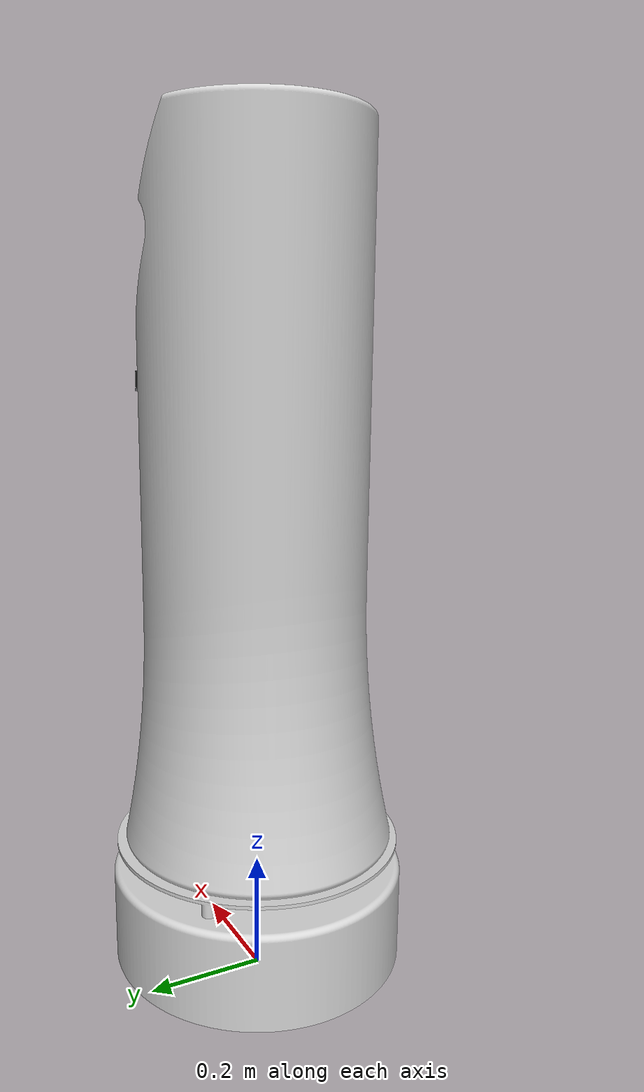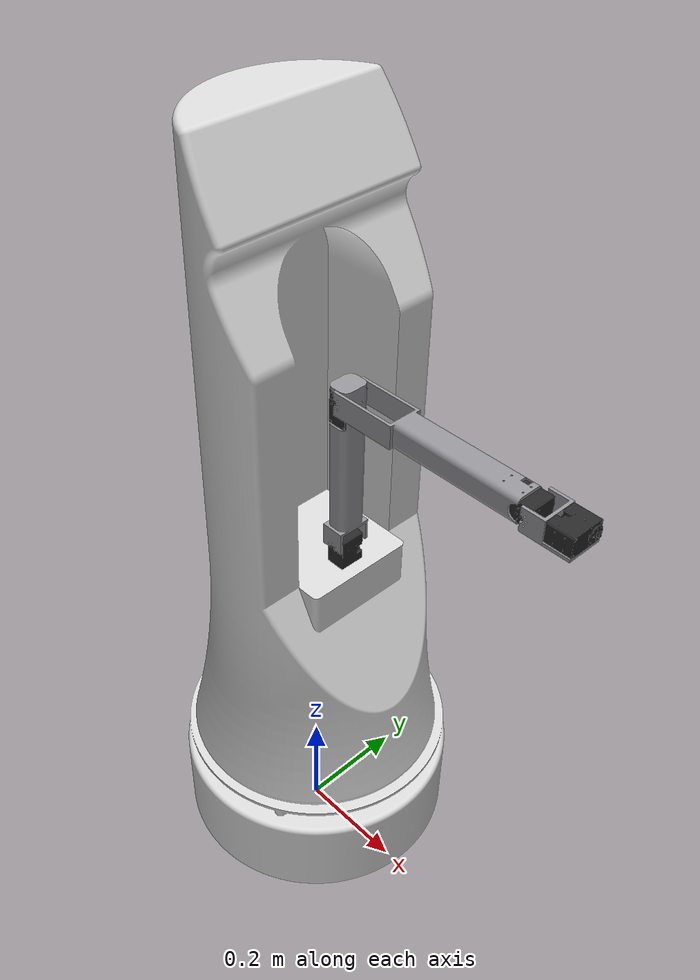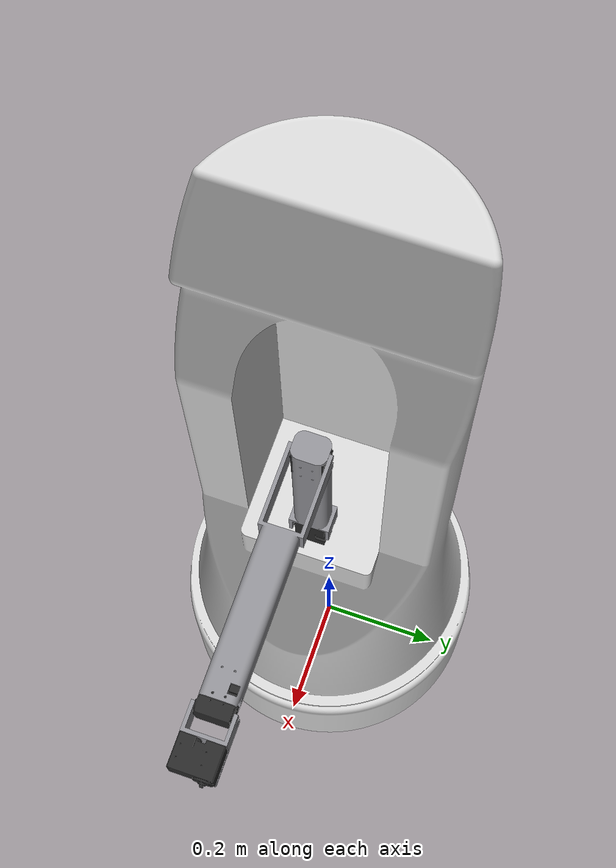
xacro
<?xml version="1.0"?>
<robot name="rav_complete_tcc" xmlns:xacro="http://www.ros.org/wiki/xacro">

  <xacro:arg name="use_fake_hardware" default="false"/>

  <xacro:include filename="$(find rav_description)/urdf/platform_with_mesh_and_wheels.urdf.xacro"/>
  <xacro:include filename="$(find rav_description)/urdf/rav_body.urdf.xacro"/>
  <xacro:include filename="$(find rav_description)/urdf/rav_manipulator.urdf.xacro"/>

  <xacro:rav_platform/>
  <xacro:rav_body parent_link="platform_base_link" xyz="0 0 0.2572" rpy="0 0 0"/>

  <xacro:property name="rav_mount_x" value="0.070"/>
  <xacro:property name="rav_mount_y" value="0.000"/>
  <xacro:property name="rav_mount_z" value="0.730"/>
  <xacro:property name="rav_mount_roll"  value="0.0"/>
  <xacro:property name="rav_mount_pitch" value="0.0"/>
  <xacro:property name="rav_mount_yaw"   value="1.57079632679"/>

  <xacro:rav_manipulator
      parent_link="platform_base_link"
      mount_xyz="${rav_mount_x} ${rav_mount_y} ${rav_mount_z}"
      mount_rpy="${rav_mount_roll} ${rav_mount_pitch} ${rav_mount_yaw}"
      use_fake_hardware="$(arg use_fake_hardware)"/>

</robot>

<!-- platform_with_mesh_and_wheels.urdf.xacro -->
<robot name="rav_platform" xmlns:xacro="http://www.ros.org/wiki/xacro">

  <xacro:macro name="rav_platform" params="">

    <xacro:property name="platform_mesh" value="platform.dae"/>
    <xacro:property name="platform_mesh_scale" value="0.001 0.001 0.001"/>

    <xacro:property name="wheel_radius" value="0.07"/>
    <xacro:property name="wheel_width"  value="0.038"/>

    <xacro:property name="platform_diameter" value="0.50"/>
    <xacro:property name="platform_radius" value="${platform_diameter/2.0}"/>

    <xacro:property name="wheel_y" value="${platform_radius + wheel_width/2.0 - 0.43}"/>
    <xacro:property name="wheel_z" value="${wheel_radius}"/>

    <link name="base_link"/>

    <link name="platform_base_link">
      <visual>
        <origin xyz="0 0 0.048" rpy="0 0 1.57"/>
        <geometry>
          <mesh filename="package://rav_description/meshes/${platform_mesh}" scale="${platform_mesh_scale}"/>
        </geometry>
      </visual>

      <collision>
        <origin xyz="-0.86 -0.25 0.04" rpy="0 0 1.57"/>
        <geometry>
          <mesh filename="package://rav_description/meshes/${platform_mesh}" scale="${platform_mesh_scale}"/>
        </geometry>
      </collision>

      <inertial>
        <origin xyz="-0.86 -0.25 0.04" rpy="0 0 0"/>
        <mass value="35.0"/>
        <inertia ixx="1.0" ixy="0.0" ixz="0.0" iyy="1.0" iyz="0.0" izz="1.0"/>
      </inertial>
    </link>

    <joint name="base_to_platform" type="fixed">
      <parent link="base_link"/>
      <child link="platform_base_link"/>
      <origin xyz="0 0 0" rpy="0 0 0"/>
    </joint>

    <link name="wheel_left_link">
      <visual>
        <origin xyz="0 0 0" rpy="1.57 0 0"/>
        <geometry>
          <cylinder radius="${wheel_radius}" length="${wheel_width}"/>
        </geometry>
        <material name="wheel_black">
          <color rgba="0.05 0.05 0.05 1.0"/>
        </material>
      </visual>
    </link>

    <joint name="wheel_left_joint" type="continuous">
      <parent link="platform_base_link"/>
      <child link="wheel_left_link"/>
      <origin xyz="0 ${wheel_y} ${wheel_z}" rpy="0 0 0"/>
      <axis xyz="0 1 0"/>
    </joint>

    <link name="wheel_right_link">
      <visual>
        <origin xyz="0 0 0" rpy="1.57 0 0"/>
        <geometry>
          <cylinder radius="${wheel_radius}" length="${wheel_width}"/>
        </geometry>
        <material name="wheel_black">
          <color rgba="0.05 0.05 0.05 1.0"/>
        </material>
      </visual>
    </link>

    <joint name="wheel_right_joint" type="continuous">
      <parent link="platform_base_link"/>
      <child link="wheel_right_link"/>
      <origin xyz="0 ${-wheel_y} ${wheel_z}" rpy="0 0 0"/>
      <axis xyz="0 1 0"/>
    </joint>

  </xacro:macro>

</robot>

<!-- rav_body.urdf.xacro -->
<robot name="rav_body" xmlns:xacro="http://www.ros.org/wiki/xacro">

  <xacro:macro name="rav_body" params="parent_link:=platform_base_link xyz:='0 0 0.2572' rpy:='0 0 0'">

    <link name="body_link">
      <visual>
        <origin xyz="0 0 -0.2572" rpy="0 0 1.57"/>
        <geometry>
          <mesh filename="package://rav_description/meshes/RAV_BODY.dae" scale="0.001 0.001 0.001"/>
        </geometry>
      </visual>

      <collision>
        <origin xyz="0 0 -0.2572" rpy="0 0 1.57"/>
        <geometry>
          <mesh filename="package://rav_description/meshes/RAV_BODY.dae" scale="0.001 0.001 0.001"/>
        </geometry>
      </collision>

      <inertial>
        <origin xyz="0 0 -0.2572" rpy="0 0 1.57"/>
        <mass value="10.0"/>
        <inertia ixx="1.0" ixy="0.0" ixz="0.0" iyy="1.0" iyz="0.0" izz="1.0"/>
      </inertial>
    </link>

    <joint name="platform_to_body_joint" type="fixed">
      <parent link="${parent_link}"/>
      <child link="body_link"/>
      <origin xyz="${xyz}" rpy="${rpy}"/>
    </joint>

  </xacro:macro>

</robot>

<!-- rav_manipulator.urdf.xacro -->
<robot name="rav_manipulator" xmlns:xacro="http://www.ros.org/wiki/xacro">

  <xacro:macro name="rav_manipulator"
               params="parent_link mount_xyz:='0 0 0' mount_rpy:='0 0 0' use_fake_hardware:=false">

    <xacro:property name="j1_to_j2_y" value="0.000029639983"/>
    <xacro:property name="j1_to_j2_z" value="0.278118072919"/>
    <xacro:property name="j2_to_j3_y" value="-0.343030187591"/>
    <xacro:property name="j2_to_j3_z" value="-0.000015558969"/>

    <!-- Limites provisórios: somente para RViz/MoveIt sem hardware real. -->
    <xacro:property name="joint_lower_limit" value="${-pi / 2.0}"/>
    <xacro:property name="joint_upper_limit" value="${ pi / 2.0}"/>
    <xacro:property name="joint_effort_limit" value="10.0"/>
    <xacro:property name="joint_velocity_limit" value="0.50"/>

    <material name="rav_manipulator_motor">
      <color rgba="0.16 0.16 0.16 1.0"/>
    </material>
    <material name="rav_manipulator_structure">
      <color rgba="0.58 0.58 0.60 1.0"/>
    </material>

    <joint name="rav_manipulator_mount_joint" type="fixed">
      <parent link="${parent_link}"/>
      <child link="manipulator_base_link"/>
      <origin xyz="${mount_xyz}" rpy="${mount_rpy}"/>
    </joint>

    <!--
      Dynamixel 1: a carcaça é fixada diretamente à estrutura interna do RAV.
      O origin abaixo leva o centro do horn do STL para a origem do link.
    -->
    <link name="manipulator_base_link">
      <visual>
        <origin xyz="0 0.047471563258 -0.733684638388" rpy="0 0 0"/>
        <geometry>
          <mesh filename="package://rav_description/meshes/manipulator/dynamixel_xm540.stl"
                scale="0.001 0.001 0.001"/>
        </geometry>
        <material name="rav_manipulator_motor"/>
      </visual>
      <collision>
        <origin xyz="0 0.047471563258 -0.733684638388" rpy="0 0 0"/>
        <geometry>
          <mesh filename="package://rav_description/meshes/manipulator/dynamixel_xm540.stl"
                scale="0.001 0.001 0.001"/>
        </geometry>
      </collision>
    </link>

    <!-- J1: o horn do Dynamixel 1 movimenta U aço 1 + Link 1. -->
    <joint name="shoulder_joint" type="revolute">
      <parent link="manipulator_base_link"/>
      <child link="shoulder_link"/>
      <origin xyz="0 0 0" rpy="0 0 0"/>
      <axis xyz="1 0 0"/>
      <limit lower="${joint_lower_limit}" upper="${joint_upper_limit}"
             effort="${joint_effort_limit}" velocity="${joint_velocity_limit}"/>
    </joint>

    <!--
      Conjunto rígido do primeiro elo:
      U aço 1 + Link 1 + carcaça fixa do Dynamixel 2.
    -->
    <link name="shoulder_link">
      <visual>
        <origin xyz="0 0.047471563258 -0.733684638388" rpy="0 0 0"/>
        <geometry>
          <mesh filename="package://rav_description/meshes/manipulator/link_1_assembly.stl"
                scale="0.001 0.001 0.001"/>
        </geometry>
        <material name="rav_manipulator_structure"/>
      </visual>
      <collision>
        <origin xyz="0 0.047471563258 -0.733684638388" rpy="0 0 0"/>
        <geometry>
          <mesh filename="package://rav_description/meshes/manipulator/link_1_assembly.stl"
                scale="0.001 0.001 0.001"/>
        </geometry>
      </collision>

      <!-- Corpo do Dynamixel 2, fixo no Link 1. -->
      <visual>
        <origin xyz="0 0.047501203241 -0.455566565469" rpy="0 0 0"/>
        <geometry>
          <mesh filename="package://rav_description/meshes/manipulator/dynamixel_xm540.stl"
                scale="0.001 0.001 0.001"/>
        </geometry>
        <material name="rav_manipulator_motor"/>
      </visual>
      <collision>
        <origin xyz="0 0.047501203241 -0.455566565469" rpy="0 0 0"/>
        <geometry>
          <mesh filename="package://rav_description/meshes/manipulator/dynamixel_xm540.stl"
                scale="0.001 0.001 0.001"/>
        </geometry>
      </collision>
    </link>

    <!-- J2: o horn do Dynamixel 2 movimenta U aço 2 + Link 2. -->
    <joint name="elbow_joint" type="revolute">
      <parent link="shoulder_link"/>
      <child link="elbow_link"/>
      <origin xyz="0 ${j1_to_j2_y} ${j1_to_j2_z}" rpy="0 0 0"/>
      <axis xyz="1 0 0"/>
      <limit lower="${joint_lower_limit}" upper="${joint_upper_limit}"
             effort="${joint_effort_limit}" velocity="${joint_velocity_limit}"/>
    </joint>

    <!--
      Conjunto rígido do segundo elo:
      U aço 2 + Link 2 + carcaça fixa do Dynamixel 3.
    -->
    <link name="elbow_link">
      <visual>
        <origin xyz="0 0.047441923275 -1.011802711307" rpy="0 0 0"/>
        <geometry>
          <mesh filename="package://rav_description/meshes/manipulator/link_2_assembly.stl"
                scale="0.001 0.001 0.001"/>
        </geometry>
        <material name="rav_manipulator_structure"/>
      </visual>
      <collision>
        <origin xyz="0 0.047441923275 -1.011802711307" rpy="0 0 0"/>
        <geometry>
          <mesh filename="package://rav_description/meshes/manipulator/link_2_assembly.stl"
                scale="0.001 0.001 0.001"/>
        </geometry>
      </collision>

      <visual>
        <origin xyz="0 0.390654450797 0.047456004289" rpy="1.57079632679 0 0"/>
        <geometry>
          <mesh filename="package://rav_description/meshes/manipulator/dynamixel_xm540.stl"
                scale="0.001 0.001 0.001"/>
        </geometry>
        <material name="rav_manipulator_motor"/>
      </visual>
      <collision>
        <origin xyz="0 0.390654450797 0.047456004289" rpy="1.57079632679 0 0"/>
        <geometry>
          <mesh filename="package://rav_description/meshes/manipulator/dynamixel_xm540.stl"
                scale="0.001 0.001 0.001"/>
        </geometry>
      </collision>
    </link>

    <!-- J3: o horn do Dynamixel 3 movimenta U aço 3 e a futura garra. -->
    <joint name="wrist_joint" type="revolute">
      <parent link="elbow_link"/>
      <child link="wrist_link"/>
      <origin xyz="0 ${j2_to_j3_y} ${j2_to_j3_z}" rpy="0 0 0"/>
      <axis xyz="1 0 0"/>
      <limit lower="${joint_lower_limit}" upper="${joint_upper_limit}"
             effort="${joint_effort_limit}" velocity="${joint_velocity_limit}"/>
    </joint>

    <!-- U aço 3, onde o Dynamixel 4 será fixado quando a garra entrar. -->
    <link name="wrist_link">
      <visual>
        <origin xyz="0 0.390472110866 -1.011787152338" rpy="0 0 0"/>
        <geometry>
          <mesh filename="package://rav_description/meshes/manipulator/wrist_assembly.stl"
                scale="0.001 0.001 0.001"/>
        </geometry>
        <material name="rav_manipulator_structure"/>
      </visual>
      <collision>
        <origin xyz="0 0.390472110866 -1.011787152338" rpy="0 0 0"/>
        <geometry>
          <mesh filename="package://rav_description/meshes/manipulator/wrist_assembly.stl"
                scale="0.001 0.001 0.001"/>
        </geometry>
      </collision>

      <visual>
        <origin xyz="-0.718 -0.0619 0.0499"
                rpy="1.57079632679 0 1.57079632679"/>
        <geometry>
          <mesh filename="package://rav_description/meshes/manipulator/dynamixel_xm540.stl"
                scale="0.001 0.001 0.001"/>
        </geometry>
        <material name="rav_manipulator_motor"/>
      </visual>
      <collision>
        <origin xyz="-0.718 -0.0619 0.0499"
                rpy="1.57079632679 0 1.57079632679"/>
        <geometry>
          <mesh filename="package://rav_description/meshes/manipulator/dynamixel_xm540.stl"
                scale="0.001 0.001 0.001"/>
        </geometry>
      </collision>
    </link>

    <!-- Frame neutro para a futura garra. A posição final ainda não foi presumida. -->
    <link name="gripper_mount"/>
    <joint name="gripper_mount_joint" type="fixed">
      <parent link="wrist_link"/>
      <child link="gripper_mount"/>
      <origin xyz="0 0 0" rpy="0 0 0"/>
    </joint>

    <!-- Simulação somente para o demo do MoveIt, sem OpenCM/Dynamixel físico. -->
    <xacro:if value="${use_fake_hardware}">
      <ros2_control name="RavManipulatorFakeSystem" type="system">
        <hardware>
          <plugin>mock_components/GenericSystem</plugin>
        </hardware>
        <joint name="shoulder_joint">
          <command_interface name="position"/>
          <state_interface name="position"/>
          <state_interface name="velocity"/>
        </joint>
        <joint name="elbow_joint">
          <command_interface name="position"/>
          <state_interface name="position"/>
          <state_interface name="velocity"/>
        </joint>
        <joint name="wrist_joint">
          <command_interface name="position"/>
          <state_interface name="position"/>
          <state_interface name="velocity"/>
        </joint>
      </ros2_control>
    </xacro:if>

  </xacro:macro>
</robot>
